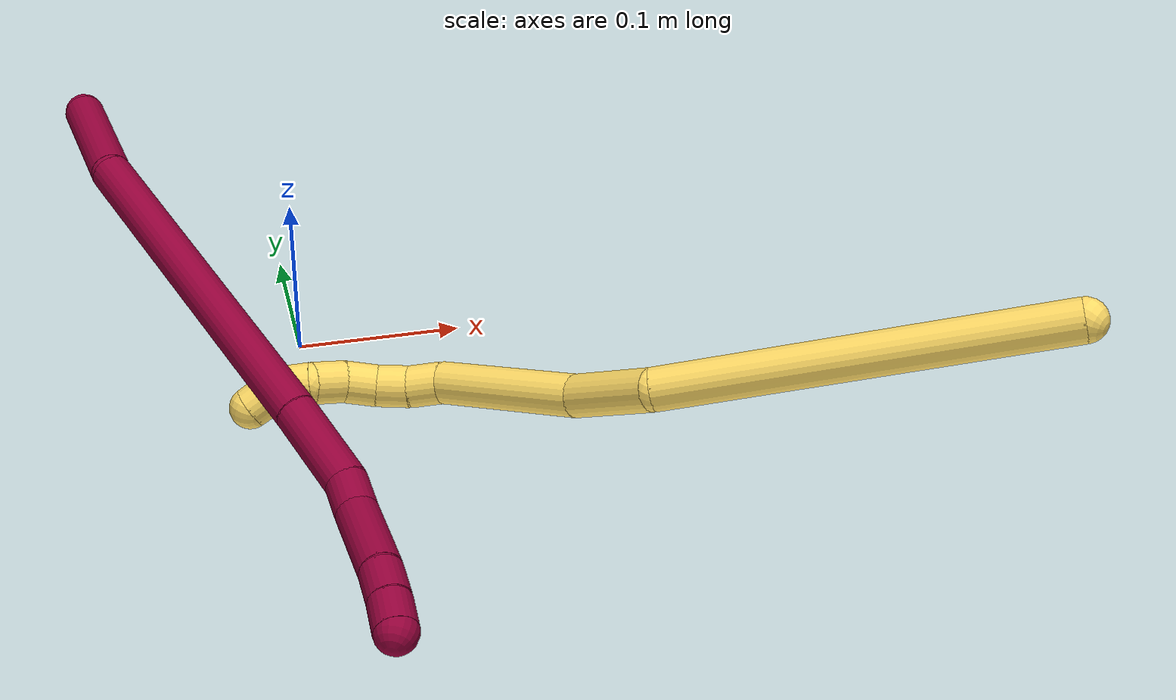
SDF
<sdf version="1.7">
 <world name="default">
  <model name="photoneo_s_sensor">
   <static>1</static>
   <pose>0 0 2 1.57079 1.57079 3.14159</pose>
   <link name="link">
    <inertial><mass>0.1</mass></inertial>
    <sensor name="sensor" type="depth">
     <update_rate>30</update_rate>
     <camera>
      <horizontal_fov>1.22</horizontal_fov>
      <image><width>1920</width><height>1200</height><format>B8G8R8</format></image>
      <clip><near>0.1</near><far>4</far></clip>
      <depth_camera><output>points</output></depth_camera>
     </camera>
     <plugin name="camera_plugin" filename="libgazebo_ros_depth_camera.so">
      <baseline>0.2</baseline>
      <alwaysOn>1</alwaysOn>
      <updateRate>0.0</updateRate>
      <cameraName>camera_ir</cameraName>
      <imageTopicName>/camera/color/image_raw</imageTopicName>
      <cameraInfoTopicName>/camera/color/camera_info</cameraInfoTopicName>
      <depthImageTopicName>/camera/depth/image_raw</depthImageTopicName>
      <depthImageCameraInfoTopicName>/camera/depth/camera_info</depthImageCameraInfoTopicName>
      <pointCloudTopicName>/camera/depth/points</pointCloudTopicName>
      <frameName>fr_optical</frameName>
      <pointCloudCutoff>0.1</pointCloudCutoff>
      <pointCloudCutoffMax>2.0</pointCloudCutoffMax>
      <distortionK1>0</distortionK1>
      <distortionK2>0</distortionK2>
      <distortionK3>0</distortionK3>
      <distortionT1>0</distortionT1>
      <distortionT2>0</distortionT2>
      <CxPrime>0</CxPrime>
      <Cx>0</Cx>
      <Cy>0</Cy>
      <focalLength>0</focalLength>
      <hackBaseline>0</hackBaseline>
     </plugin>
    </sensor>
   </link>
  </model>
  <model name="bin">
   <static>1</static>
   <link name="bottom">
    <collision name="collision-bottom">
     <pose>0 0 -0.01 0 -0 0</pose>
     <geometry><box><size>0.8 0.6 0.02</size></box></geometry>
     <surface>
      <friction><ode><mu>100</mu><mu2>100</mu2></ode></friction>
      <contact><collide_bitmask>65535</collide_bitmask></contact>
     </surface>
    </collision>
   </link>
   <link name="west_wall">
    <collision name="collision-west_wall">
     <pose>-0.41 0 0.1 0 -0 0</pose>
     <geometry><box><size>0.02 0.6 0.2</size></box></geometry>
     <surface>
      <friction><ode><mu>100</mu><mu2>100</mu2></ode></friction>
      <contact><collide_bitmask>65535</collide_bitmask></contact>
     </surface>
    </collision>
   </link>
   <link name="east_wall">
    <collision name="collision-east_wall">
     <pose>0.41 0 0.1 0 -0 0</pose>
     <geometry><box><size>0.02 0.6 0.2</size></box></geometry>
     <surface>
      <friction><ode><mu>100</mu><mu2>100</mu2></ode></friction>
      <contact><collide_bitmask>65535</collide_bitmask></contact>
     </surface>
    </collision>
   </link>
   <link name="south_wall">
    <collision name="collision-south_wall">
     <pose>0 -0.31 0.1 0 -0 0</pose>
     <geometry><box><size>0.8 0.02 0.2</size></box></geometry>
     <surface>
      <friction><ode><mu>100</mu><mu2>100</mu2></ode></friction>
      <contact><collide_bitmask>65535</collide_bitmask></contact>
     </surface>
    </collision>
   </link>
   <link name="north_wall">
    <collision name="collision-north_wall">
     <pose>0 0.31 0.1 0 -0 0</pose>
     <geometry><box><size>0.8 0.02 0.2</size></box></geometry>
     <surface>
      <friction><ode><mu>100</mu><mu2>100</mu2></ode></friction>
      <contact><collide_bitmask>65535</collide_bitmask></contact>
     </surface>
    </collision>
   </link>
  </model>
  <model name="5">
   <static>0</static>
   <link name="5">
    <collision name="collision-cylinder-e_1_1_4">
     <pose>-0.06861 0.017706 -0.091676 -2.9508 -0.633716 2.57375</pose>
     <geometry><cylinder><radius>0.0125</radius><length>0.231735</length></cylinder></geometry>
     <surface>
      <friction><ode><mu>1.16</mu><mu2>1.16</mu2><slip1>0</slip1><slip2>0</slip2></ode></friction>
      <contact><ode><kp>1e+06</kp><kd>1</kd><max_vel>0</max_vel><min_depth>0.001</min_depth></ode></contact>
     </surface>
    </collision>
    <visual name="visual-cylinder-e_1_1_4">
     <pose>-0.06861 0.017706 -0.091676 -2.9508 -0.633716 2.57375</pose>
     <geometry><cylinder><radius>0.0125</radius><length>0.231735</length></cylinder></geometry>
     <material><ambient>1 0.858824 0.4 1</ambient></material>
    </visual>
    <collision name="collision-cylinder-e_2_4_5">
     <pose>-0.149081 0.026963 -0.207443 2.8043 -0.4349 -1.82846</pose>
     <geometry><cylinder><radius>0.0125</radius><length>0.056301</length></cylinder></geometry>
     <surface>
      <friction><ode><mu>1.16</mu><mu2>1.16</mu2><slip1>0</slip1><slip2>0</slip2></ode></friction>
      <contact><ode><kp>1e+06</kp><kd>1</kd><max_vel>0</max_vel><min_depth>0.001</min_depth></ode></contact>
     </surface>
    </collision>
    <visual name="visual-cylinder-e_2_4_5">
     <pose>-0.149081 0.026963 -0.207443 2.8043 -0.4349 -1.82846</pose>
     <geometry><cylinder><radius>0.0125</radius><length>0.056301</length></cylinder></geometry>
     <material><ambient>1 0.858824 0.4 1</ambient></material>
    </visual>
    <collision name="collision-cylinder-e_3_5_6">
     <pose>-0.176526 0.014677 -0.274321 3.05215 -0.348029 -2.64305</pose>
     <geometry><cylinder><radius>0.0125</radius><length>0.091397</length></cylinder></geometry>
     <surface>
      <friction><ode><mu>1.16</mu><mu2>1.16</mu2><slip1>0</slip1><slip2>0</slip2></ode></friction>
      <contact><ode><kp>1e+06</kp><kd>1</kd><max_vel>0</max_vel><min_depth>0.001</min_depth></ode></contact>
     </surface>
    </collision>
    <visual name="visual-cylinder-e_3_5_6">
     <pose>-0.176526 0.014677 -0.274321 3.05215 -0.348029 -2.64305</pose>
     <geometry><cylinder><radius>0.0125</radius><length>0.091397</length></cylinder></geometry>
     <material><ambient>1 0.858824 0.4 1</ambient></material>
    </visual>
    <collision name="collision-cylinder-e_4_6_7">
     <pose>-0.19781 0.012721 -0.325184 -2.91277 -0.602123 2.43269</pose>
     <geometry><cylinder><radius>0.0125</radius><length>0.020121</length></cylinder></geometry>
     <surface>
      <friction><ode><mu>1.16</mu><mu2>1.16</mu2><slip1>0</slip1><slip2>0</slip2></ode></friction>
      <contact><ode><kp>1e+06</kp><kd>1</kd><max_vel>0</max_vel><min_depth>0.001</min_depth></ode></contact>
     </surface>
    </collision>
    <visual name="visual-cylinder-e_4_6_7">
     <pose>-0.19781 0.012721 -0.325184 -2.91277 -0.602123 2.43269</pose>
     <geometry><cylinder><radius>0.0125</radius><length>0.020121</length></cylinder></geometry>
     <material><ambient>1 0.858824 0.4 1</ambient></material>
    </visual>
    <collision name="collision-cylinder-e_5_7_8">
     <pose>-0.207941 0.017576 -0.341787 -2.80597 -0.456268 1.88092</pose>
     <geometry><cylinder><radius>0.0125</radius><length>0.020121</length></cylinder></geometry>
     <surface>
      <friction><ode><mu>1.16</mu><mu2>1.16</mu2><slip1>0</slip1><slip2>0</slip2></ode></friction>
      <contact><ode><kp>1e+06</kp><kd>1</kd><max_vel>0</max_vel><min_depth>0.001</min_depth></ode></contact>
     </surface>
    </collision>
    <visual name="visual-cylinder-e_5_7_8">
     <pose>-0.207941 0.017576 -0.341787 -2.80597 -0.456268 1.88092</pose>
     <geometry><cylinder><radius>0.0125</radius><length>0.020121</length></cylinder></geometry>
     <material><ambient>1 0.858824 0.4 1</ambient></material>
    </visual>
    <collision name="collision-cylinder-e_6_8_9">
     <pose>-0.215759 0.026821 -0.357375 -2.41544 -0.344256 0.858303</pose>
     <geometry><cylinder><radius>0.0125</radius><length>0.020064</length></cylinder></geometry>
     <surface>
      <friction><ode><mu>1.16</mu><mu2>1.16</mu2><slip1>0</slip1><slip2>0</slip2></ode></friction>
      <contact><ode><kp>1e+06</kp><kd>1</kd><max_vel>0</max_vel><min_depth>0.001</min_depth></ode></contact>
     </surface>
    </collision>
    <visual name="visual-cylinder-e_6_8_9">
     <pose>-0.215759 0.026821 -0.357375 -2.41544 -0.344256 0.858303</pose>
     <geometry><cylinder><radius>0.0125</radius><length>0.020064</length></cylinder></geometry>
     <material><ambient>1 0.858824 0.4 1</ambient></material>
    </visual>
    <collision name="collision-cylinder-e_7_9_10">
     <pose>-0.223635 0.040704 -0.369128 -2.12307 -0.465322 0.802635</pose>
     <geometry><cylinder><radius>0.0125</radius><length>0.020011</length></cylinder></geometry>
     <surface>
      <friction><ode><mu>1.16</mu><mu2>1.16</mu2><slip1>0</slip1><slip2>0</slip2></ode></friction>
      <contact><ode><kp>1e+06</kp><kd>1</kd><max_vel>0</max_vel><min_depth>0.001</min_depth></ode></contact>
     </surface>
    </collision>
    <visual name="visual-cylinder-e_7_9_10">
     <pose>-0.223635 0.040704 -0.369128 -2.12307 -0.465322 0.802635</pose>
     <geometry><cylinder><radius>0.0125</radius><length>0.020011</length></cylinder></geometry>
     <material><ambient>1 0.858824 0.4 1</ambient></material>
    </visual>
    <collision name="collision-cylinder-e_8_10_11">
     <pose>-0.233952 0.051995 -0.381137 -2.67578 -0.618392 1.86413</pose>
     <geometry><cylinder><radius>0.0125</radius><length>0.020105</length></cylinder></geometry>
     <surface>
      <friction><ode><mu>1.16</mu><mu2>1.16</mu2><slip1>0</slip1><slip2>0</slip2></ode></friction>
      <contact><ode><kp>1e+06</kp><kd>1</kd><max_vel>0</max_vel><min_depth>0.001</min_depth></ode></contact>
     </surface>
    </collision>
    <visual name="visual-cylinder-e_8_10_11">
     <pose>-0.233952 0.051995 -0.381137 -2.67578 -0.618392 1.86413</pose>
     <geometry><cylinder><radius>0.0125</radius><length>0.020105</length></cylinder></geometry>
     <material><ambient>1 0.858824 0.4 1</ambient></material>
    </visual>
    <collision name="collision-cylinder-e_9_11_2">
     <pose>-0.24882 0.05753 -0.39249 -2.71045 -1.11415 2.46549</pose>
     <geometry><cylinder><radius>0.0125</radius><length>0.020144</length></cylinder></geometry>
     <surface>
      <friction><ode><mu>1.16</mu><mu2>1.16</mu2><slip1>0</slip1><slip2>0</slip2></ode></friction>
      <contact><ode><kp>1e+06</kp><kd>1</kd><max_vel>0</max_vel><min_depth>0.001</min_depth></ode></contact>
     </surface>
    </collision>
    <visual name="visual-cylinder-e_9_11_2">
     <pose>-0.24882 0.05753 -0.39249 -2.71045 -1.11415 2.46549</pose>
     <geometry><cylinder><radius>0.0125</radius><length>0.020144</length></cylinder></geometry>
     <material><ambient>1 0.858824 0.4 1</ambient></material>
    </visual>
    <collision name="collision-sphere-2">
     <pose>-0.25786 0.059386 -0.396524 0 -0 0</pose>
     <geometry><sphere><radius>0.0125</radius></sphere></geometry>
     <surface>
      <friction><ode><mu>1.16</mu><mu2>1.16</mu2><slip1>0</slip1><slip2>0</slip2></ode></friction>
      <contact><ode><kp>1e+06</kp><kd>1</kd><max_vel>0</max_vel><min_depth>0.001</min_depth></ode></contact>
     </surface>
    </collision>
    <visual name="visual-sphere-2">
     <pose>-0.25786 0.059386 -0.396524 0 -0 0</pose>
     <geometry><sphere><radius>0.0125</radius></sphere></geometry>
     <material><ambient>1 0.858824 0.4 1</ambient></material>
    </visual>
    <collision name="collision-sphere-11">
     <pose>-0.23978 0.055674 -0.388455 0 -0 0</pose>
     <geometry><sphere><radius>0.0125</radius></sphere></geometry>
     <surface>
      <friction><ode><mu>1.16</mu><mu2>1.16</mu2><slip1>0</slip1><slip2>0</slip2></ode></friction>
      <contact><ode><kp>1e+06</kp><kd>1</kd><max_vel>0</max_vel><min_depth>0.001</min_depth></ode></contact>
     </surface>
    </collision>
    <visual name="visual-sphere-11">
     <pose>-0.23978 0.055674 -0.388455 0 -0 0</pose>
     <geometry><sphere><radius>0.0125</radius></sphere></geometry>
     <material><ambient>1 0.858824 0.4 1</ambient></material>
    </visual>
    <collision name="collision-sphere-10">
     <pose>-0.228124 0.048316 -0.373819 0 -0 0</pose>
     <geometry><sphere><radius>0.0125</radius></sphere></geometry>
     <surface>
      <friction><ode><mu>1.16</mu><mu2>1.16</mu2><slip1>0</slip1><slip2>0</slip2></ode></friction>
      <contact><ode><kp>1e+06</kp><kd>1</kd><max_vel>0</max_vel><min_depth>0.001</min_depth></ode></contact>
     </surface>
    </collision>
    <visual name="visual-sphere-10">
     <pose>-0.228124 0.048316 -0.373819 0 -0 0</pose>
     <geometry><sphere><radius>0.0125</radius></sphere></geometry>
     <material><ambient>1 0.858824 0.4 1</ambient></material>
    </visual>
    <collision name="collision-sphere-9">
     <pose>-0.219145 0.033092 -0.364437 0 -0 0</pose>
     <geometry><sphere><radius>0.0125</radius></sphere></geometry>
     <surface>
      <friction><ode><mu>1.16</mu><mu2>1.16</mu2><slip1>0</slip1><slip2>0</slip2></ode></friction>
      <contact><ode><kp>1e+06</kp><kd>1</kd><max_vel>0</max_vel><min_depth>0.001</min_depth></ode></contact>
     </surface>
    </collision>
    <visual name="visual-sphere-9">
     <pose>-0.219145 0.033092 -0.364437 0 -0 0</pose>
     <geometry><sphere><radius>0.0125</radius></sphere></geometry>
     <material><ambient>1 0.858824 0.4 1</ambient></material>
    </visual>
    <collision name="collision-sphere-4">
     <pose>-0.13722 0.035412 -0.183351 0 -0 0</pose>
     <geometry><sphere><radius>0.0125</radius></sphere></geometry>
     <surface>
      <friction><ode><mu>1.16</mu><mu2>1.16</mu2><slip1>0</slip1><slip2>0</slip2></ode></friction>
      <contact><ode><kp>1e+06</kp><kd>1</kd><max_vel>0</max_vel><min_depth>0.001</min_depth></ode></contact>
     </surface>
    </collision>
    <visual name="visual-sphere-4">
     <pose>-0.13722 0.035412 -0.183351 0 -0 0</pose>
     <geometry><sphere><radius>0.0125</radius></sphere></geometry>
     <material><ambient>1 0.858824 0.4 1</ambient></material>
    </visual>
    <collision name="collision-sphere-1">
     <geometry><sphere><radius>0.0125</radius></sphere></geometry>
     <surface>
      <friction><ode><mu>1.16</mu><mu2>1.16</mu2><slip1>0</slip1><slip2>0</slip2></ode></friction>
      <contact><ode><kp>1e+06</kp><kd>1</kd><max_vel>0</max_vel><min_depth>0.001</min_depth></ode></contact>
     </surface>
    </collision>
    <visual name="visual-sphere-1">
     <geometry><sphere><radius>0.0125</radius></sphere></geometry>
     <material><ambient>1 0.858824 0.4 1</ambient></material>
    </visual>
    <collision name="collision-sphere-8">
     <pose>-0.212374 0.020551 -0.350314 0 -0 0</pose>
     <geometry><sphere><radius>0.0125</radius></sphere></geometry>
     <surface>
      <friction><ode><mu>1.16</mu><mu2>1.16</mu2><slip1>0</slip1><slip2>0</slip2></ode></friction>
      <contact><ode><kp>1e+06</kp><kd>1</kd><max_vel>0</max_vel><min_depth>0.001</min_depth></ode></contact>
     </surface>
    </collision>
    <visual name="visual-sphere-8">
     <pose>-0.212374 0.020551 -0.350314 0 -0 0</pose>
     <geometry><sphere><radius>0.0125</radius></sphere></geometry>
     <material><ambient>1 0.858824 0.4 1</ambient></material>
    </visual>
    <collision name="collision-sphere-5">
     <pose>-0.160941 0.018515 -0.231534 0 -0 0</pose>
     <geometry><sphere><radius>0.0125</radius></sphere></geometry>
     <surface>
      <friction><ode><mu>1.16</mu><mu2>1.16</mu2><slip1>0</slip1><slip2>0</slip2></ode></friction>
      <contact><ode><kp>1e+06</kp><kd>1</kd><max_vel>0</max_vel><min_depth>0.001</min_depth></ode></contact>
     </surface>
    </collision>
    <visual name="visual-sphere-5">
     <pose>-0.160941 0.018515 -0.231534 0 -0 0</pose>
     <geometry><sphere><radius>0.0125</radius></sphere></geometry>
     <material><ambient>1 0.858824 0.4 1</ambient></material>
    </visual>
    <collision name="collision-sphere-6">
     <pose>-0.192112 0.01084 -0.317109 0 -0 0</pose>
     <geometry><sphere><radius>0.0125</radius></sphere></geometry>
     <surface>
      <friction><ode><mu>1.16</mu><mu2>1.16</mu2><slip1>0</slip1><slip2>0</slip2></ode></friction>
      <contact><ode><kp>1e+06</kp><kd>1</kd><max_vel>0</max_vel><min_depth>0.001</min_depth></ode></contact>
     </surface>
    </collision>
    <visual name="visual-sphere-6">
     <pose>-0.192112 0.01084 -0.317109 0 -0 0</pose>
     <geometry><sphere><radius>0.0125</radius></sphere></geometry>
     <material><ambient>1 0.858824 0.4 1</ambient></material>
    </visual>
    <collision name="collision-sphere-7">
     <pose>-0.203508 0.014602 -0.333259 0 -0 0</pose>
     <geometry><sphere><radius>0.0125</radius></sphere></geometry>
     <surface>
      <friction><ode><mu>1.16</mu><mu2>1.16</mu2><slip1>0</slip1><slip2>0</slip2></ode></friction>
      <contact><ode><kp>1e+06</kp><kd>1</kd><max_vel>0</max_vel><min_depth>0.001</min_depth></ode></contact>
     </surface>
    </collision>
    <visual name="visual-sphere-7">
     <pose>-0.203508 0.014602 -0.333259 0 -0 0</pose>
     <geometry><sphere><radius>0.0125</radius></sphere></geometry>
     <material><ambient>1 0.858824 0.4 1</ambient></material>
    </visual>
    <inertial>
     <pose>-0.134222 0.022258 -0.203085 0 -0 0</pose>
     <mass>0.5</mass>
     <inertia>
      <ixx>-0.000377</ixx>
      <ixy>0</ixy>
      <ixz>0</ixz>
      <iyy>0.001417</iyy>
      <iyz>0</iyz>
      <izz>0.000471</izz>
     </inertia>
    </inertial>
   </link>
   <pose>0.383507 -0.262859 0.133415 1.69374 -0.843389 0.576061</pose>
  </model>
  <model name="8">
   <static>0</static>
   <link name="8">
    <collision name="collision-cylinder-e_1_1_4">
     <pose>0.022819 -0.008073 0.036658 0.216765 0.546211 0.060937</pose>
     <geometry><cylinder><radius>0.0125</radius><length>0.087857</length></cylinder></geometry>
     <surface>
      <friction><ode><mu>1.16</mu><mu2>1.16</mu2><slip1>0</slip1><slip2>0</slip2></ode></friction>
      <contact><ode><kp>1e+06</kp><kd>1</kd><max_vel>0</max_vel><min_depth>0.001</min_depth></ode></contact>
     </surface>
    </collision>
    <visual name="visual-cylinder-e_1_1_4">
     <pose>0.022819 -0.008073 0.036658 0.216765 0.546211 0.060937</pose>
     <geometry><cylinder><radius>0.0125</radius><length>0.087857</length></cylinder></geometry>
     <material><ambient>0.584314 0 0.227451 1</ambient></material>
    </visual>
    <collision name="collision-cylinder-e_2_4_5">
     <pose>0.099453 -0.073751 0.160565 0.583543 0.475365 0.145267</pose>
     <geometry><cylinder><radius>0.0125</radius><length>0.235174</length></cylinder></geometry>
     <surface>
      <friction><ode><mu>1.16</mu><mu2>1.16</mu2><slip1>0</slip1><slip2>0</slip2></ode></friction>
      <contact><ode><kp>1e+06</kp><kd>1</kd><max_vel>0</max_vel><min_depth>0.001</min_depth></ode></contact>
     </surface>
    </collision>
    <visual name="visual-cylinder-e_2_4_5">
     <pose>0.099453 -0.073751 0.160565 0.583543 0.475365 0.145267</pose>
     <geometry><cylinder><radius>0.0125</radius><length>0.235174</length></cylinder></geometry>
     <material><ambient>0.584314 0 0.227451 1</ambient></material>
    </visual>
    <collision name="collision-cylinder-e_3_5_6">
     <pose>0.164637 -0.146337 0.26886 0.618576 0.414564 0.134199</pose>
     <geometry><cylinder><radius>0.0125</radius><length>0.056448</length></cylinder></geometry>
     <surface>
      <friction><ode><mu>1.16</mu><mu2>1.16</mu2><slip1>0</slip1><slip2>0</slip2></ode></friction>
      <contact><ode><kp>1e+06</kp><kd>1</kd><max_vel>0</max_vel><min_depth>0.001</min_depth></ode></contact>
     </surface>
    </collision>
    <visual name="visual-cylinder-e_3_5_6">
     <pose>0.164637 -0.146337 0.26886 0.618576 0.414564 0.134199</pose>
     <geometry><cylinder><radius>0.0125</radius><length>0.056448</length></cylinder></geometry>
     <material><ambient>0.584314 0 0.227451 1</ambient></material>
    </visual>
    <collision name="collision-cylinder-e_4_6_7">
     <pose>0.179846 -0.164786 0.300183 0.325547 0.340336 0.056423</pose>
     <geometry><cylinder><radius>0.0125</radius><length>0.023013</length></cylinder></geometry>
     <surface>
      <friction><ode><mu>1.16</mu><mu2>1.16</mu2><slip1>0</slip1><slip2>0</slip2></ode></friction>
      <contact><ode><kp>1e+06</kp><kd>1</kd><max_vel>0</max_vel><min_depth>0.001</min_depth></ode></contact>
     </surface>
    </collision>
    <visual name="visual-cylinder-e_4_6_7">
     <pose>0.179846 -0.164786 0.300183 0.325547 0.340336 0.056423</pose>
     <geometry><cylinder><radius>0.0125</radius><length>0.023013</length></cylinder></geometry>
     <material><ambient>0.584314 0 0.227451 1</ambient></material>
    </visual>
    <collision name="collision-cylinder-e_5_7_8">
     <pose>0.197405 -0.171457 0.333524 0.137964 0.5324 0.037674</pose>
     <geometry><cylinder><radius>0.0125</radius><length>0.05405</length></cylinder></geometry>
     <surface>
      <friction><ode><mu>1.16</mu><mu2>1.16</mu2><slip1>0</slip1><slip2>0</slip2></ode></friction>
      <contact><ode><kp>1e+06</kp><kd>1</kd><max_vel>0</max_vel><min_depth>0.001</min_depth></ode></contact>
     </surface>
    </collision>
    <visual name="visual-cylinder-e_5_7_8">
     <pose>0.197405 -0.171457 0.333524 0.137964 0.5324 0.037674</pose>
     <geometry><cylinder><radius>0.0125</radius><length>0.05405</length></cylinder></geometry>
     <material><ambient>0.584314 0 0.227451 1</ambient></material>
    </visual>
    <collision name="collision-cylinder-e_6_8_9">
     <pose>0.215683 -0.176472 0.366797 0.175693 0.414346 0.03702</pose>
     <geometry><cylinder><radius>0.0125</radius><length>0.022656</length></cylinder></geometry>
     <surface>
      <friction><ode><mu>1.16</mu><mu2>1.16</mu2><slip1>0</slip1><slip2>0</slip2></ode></friction>
      <contact><ode><kp>1e+06</kp><kd>1</kd><max_vel>0</max_vel><min_depth>0.001</min_depth></ode></contact>
     </surface>
    </collision>
    <visual name="visual-cylinder-e_6_8_9">
     <pose>0.215683 -0.176472 0.366797 0.175693 0.414346 0.03702</pose>
     <geometry><cylinder><radius>0.0125</radius><length>0.022656</length></cylinder></geometry>
     <material><ambient>0.584314 0 0.227451 1</ambient></material>
    </visual>
    <collision name="collision-cylinder-e_7_9_2">
     <pose>0.223631 -0.18006 0.386679 0.181588 0.3317 0.030477</pose>
     <geometry><cylinder><radius>0.0125</radius><length>0.020801</length></cylinder></geometry>
     <surface>
      <friction><ode><mu>1.16</mu><mu2>1.16</mu2><slip1>0</slip1><slip2>0</slip2></ode></friction>
      <contact><ode><kp>1e+06</kp><kd>1</kd><max_vel>0</max_vel><min_depth>0.001</min_depth></ode></contact>
     </surface>
    </collision>
    <visual name="visual-cylinder-e_7_9_2">
     <pose>0.223631 -0.18006 0.386679 0.181588 0.3317 0.030477</pose>
     <geometry><cylinder><radius>0.0125</radius><length>0.020801</length></cylinder></geometry>
     <material><ambient>0.584314 0 0.227451 1</ambient></material>
    </visual>
    <collision name="collision-sphere-2">
     <pose>0.227018 -0.181836 0.396351 0 -0 0</pose>
     <geometry><sphere><radius>0.0125</radius></sphere></geometry>
     <surface>
      <friction><ode><mu>1.16</mu><mu2>1.16</mu2><slip1>0</slip1><slip2>0</slip2></ode></friction>
      <contact><ode><kp>1e+06</kp><kd>1</kd><max_vel>0</max_vel><min_depth>0.001</min_depth></ode></contact>
     </surface>
    </collision>
    <visual name="visual-sphere-2">
     <pose>0.227018 -0.181836 0.396351 0 -0 0</pose>
     <geometry><sphere><radius>0.0125</radius></sphere></geometry>
     <material><ambient>0.584314 0 0.227451 1</ambient></material>
    </visual>
    <collision name="collision-sphere-9">
     <pose>0.220244 -0.178284 0.377007 0 -0 0</pose>
     <geometry><sphere><radius>0.0125</radius></sphere></geometry>
     <surface>
      <friction><ode><mu>1.16</mu><mu2>1.16</mu2><slip1>0</slip1><slip2>0</slip2></ode></friction>
      <contact><ode><kp>1e+06</kp><kd>1</kd><max_vel>0</max_vel><min_depth>0.001</min_depth></ode></contact>
     </surface>
    </collision>
    <visual name="visual-sphere-9">
     <pose>0.220244 -0.178284 0.377007 0 -0 0</pose>
     <geometry><sphere><radius>0.0125</radius></sphere></geometry>
     <material><ambient>0.584314 0 0.227451 1</ambient></material>
    </visual>
    <collision name="collision-sphere-4">
     <pose>0.045637 -0.016146 0.073317 0 -0 0</pose>
     <geometry><sphere><radius>0.0125</radius></sphere></geometry>
     <surface>
      <friction><ode><mu>1.16</mu><mu2>1.16</mu2><slip1>0</slip1><slip2>0</slip2></ode></friction>
      <contact><ode><kp>1e+06</kp><kd>1</kd><max_vel>0</max_vel><min_depth>0.001</min_depth></ode></contact>
     </surface>
    </collision>
    <visual name="visual-sphere-4">
     <pose>0.045637 -0.016146 0.073317 0 -0 0</pose>
     <geometry><sphere><radius>0.0125</radius></sphere></geometry>
     <material><ambient>0.584314 0 0.227451 1</ambient></material>
    </visual>
    <collision name="collision-sphere-1">
     <geometry><sphere><radius>0.0125</radius></sphere></geometry>
     <surface>
      <friction><ode><mu>1.16</mu><mu2>1.16</mu2><slip1>0</slip1><slip2>0</slip2></ode></friction>
      <contact><ode><kp>1e+06</kp><kd>1</kd><max_vel>0</max_vel><min_depth>0.001</min_depth></ode></contact>
     </surface>
    </collision>
    <visual name="visual-sphere-1">
     <geometry><sphere><radius>0.0125</radius></sphere></geometry>
     <material><ambient>0.584314 0 0.227451 1</ambient></material>
    </visual>
    <collision name="collision-sphere-8">
     <pose>0.211123 -0.174659 0.356587 0 -0 0</pose>
     <geometry><sphere><radius>0.0125</radius></sphere></geometry>
     <surface>
      <friction><ode><mu>1.16</mu><mu2>1.16</mu2><slip1>0</slip1><slip2>0</slip2></ode></friction>
      <contact><ode><kp>1e+06</kp><kd>1</kd><max_vel>0</max_vel><min_depth>0.001</min_depth></ode></contact>
     </surface>
    </collision>
    <visual name="visual-sphere-8">
     <pose>0.211123 -0.174659 0.356587 0 -0 0</pose>
     <geometry><sphere><radius>0.0125</radius></sphere></geometry>
     <material><ambient>0.584314 0 0.227451 1</ambient></material>
    </visual>
    <collision name="collision-sphere-5">
     <pose>0.153268 -0.131357 0.247814 0 -0 0</pose>
     <geometry><sphere><radius>0.0125</radius></sphere></geometry>
     <surface>
      <friction><ode><mu>1.16</mu><mu2>1.16</mu2><slip1>0</slip1><slip2>0</slip2></ode></friction>
      <contact><ode><kp>1e+06</kp><kd>1</kd><max_vel>0</max_vel><min_depth>0.001</min_depth></ode></contact>
     </surface>
    </collision>
    <visual name="visual-sphere-5">
     <pose>0.153268 -0.131357 0.247814 0 -0 0</pose>
     <geometry><sphere><radius>0.0125</radius></sphere></geometry>
     <material><ambient>0.584314 0 0.227451 1</ambient></material>
    </visual>
    <collision name="collision-sphere-6">
     <pose>0.176005 -0.161317 0.289907 0 -0 0</pose>
     <geometry><sphere><radius>0.0125</radius></sphere></geometry>
     <surface>
      <friction><ode><mu>1.16</mu><mu2>1.16</mu2><slip1>0</slip1><slip2>0</slip2></ode></friction>
      <contact><ode><kp>1e+06</kp><kd>1</kd><max_vel>0</max_vel><min_depth>0.001</min_depth></ode></contact>
     </surface>
    </collision>
    <visual name="visual-sphere-6">
     <pose>0.176005 -0.161317 0.289907 0 -0 0</pose>
     <geometry><sphere><radius>0.0125</radius></sphere></geometry>
     <material><ambient>0.584314 0 0.227451 1</ambient></material>
    </visual>
    <collision name="collision-sphere-7">
     <pose>0.183687 -0.168255 0.31046 0 -0 0</pose>
     <geometry><sphere><radius>0.0125</radius></sphere></geometry>
     <surface>
      <friction><ode><mu>1.16</mu><mu2>1.16</mu2><slip1>0</slip1><slip2>0</slip2></ode></friction>
      <contact><ode><kp>1e+06</kp><kd>1</kd><max_vel>0</max_vel><min_depth>0.001</min_depth></ode></contact>
     </surface>
    </collision>
    <visual name="visual-sphere-7">
     <pose>0.183687 -0.168255 0.31046 0 -0 0</pose>
     <geometry><sphere><radius>0.0125</radius></sphere></geometry>
     <material><ambient>0.584314 0 0.227451 1</ambient></material>
    </visual>
    <inertial>
     <pose>0.118068 -0.094235 0.194894 0 -0 0</pose>
     <mass>0.5</mass>
     <inertia>
      <ixx>0.001211</ixx>
      <ixy>0</ixy>
      <ixz>0</ixz>
      <iyy>0.001169</iyy>
      <iyz>0</iyz>
      <izz>4.2e-05</izz>
     </inertia>
    </inertial>
   </link>
   <pose>-0.114662 0.180909 0.084835 1.95992 -0.765642 -0.646049</pose>
  </model>
 </world>
</sdf>
